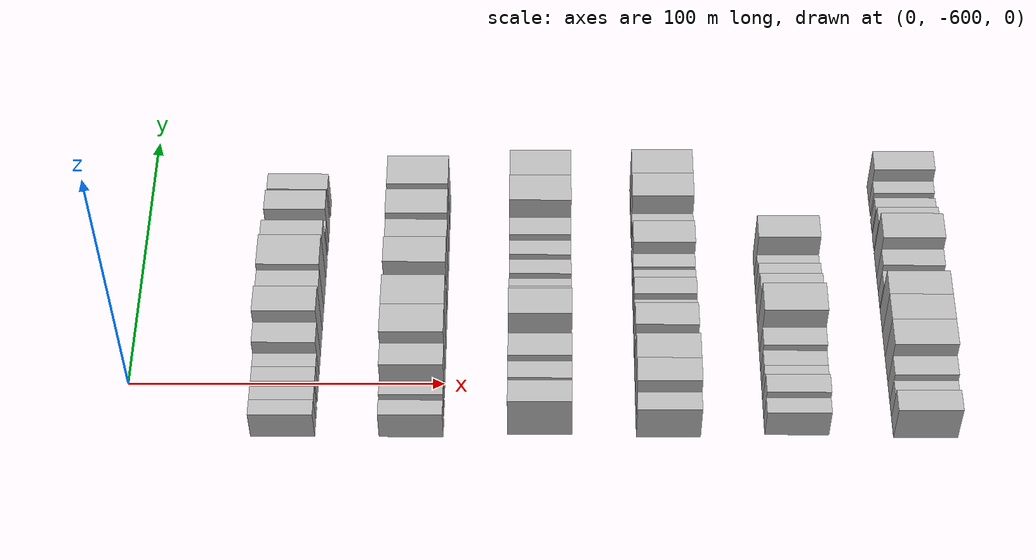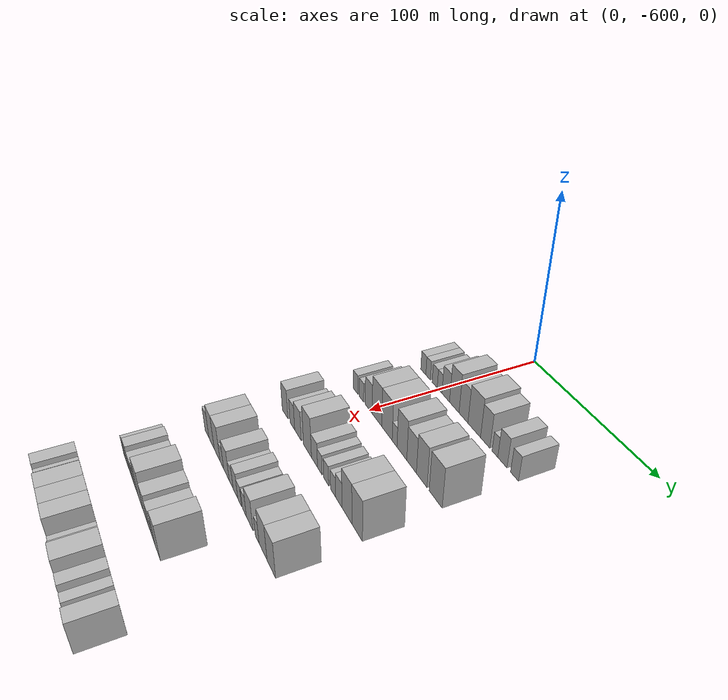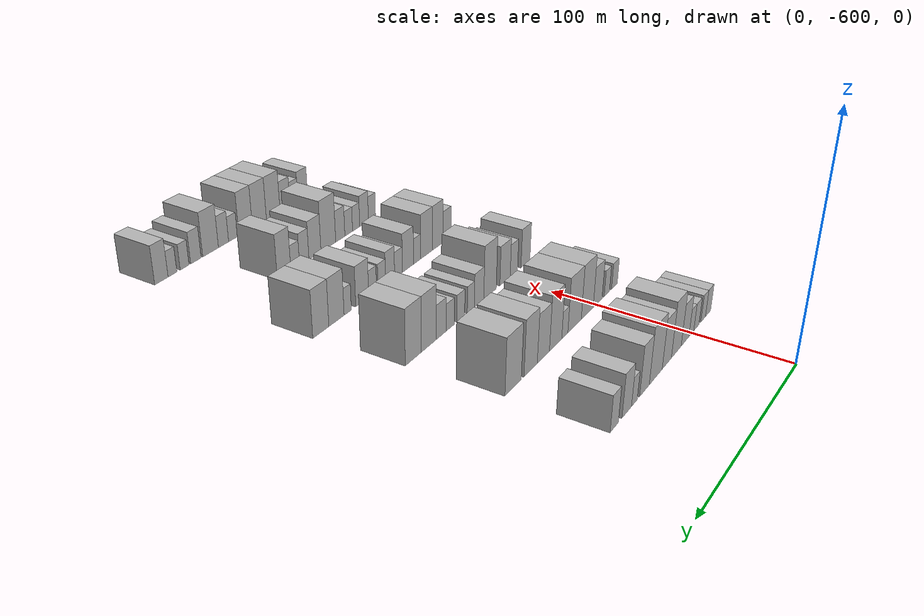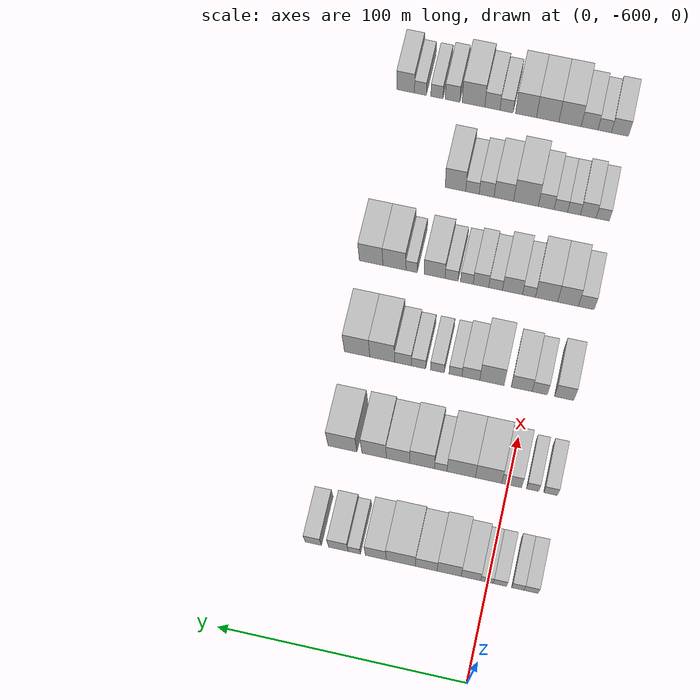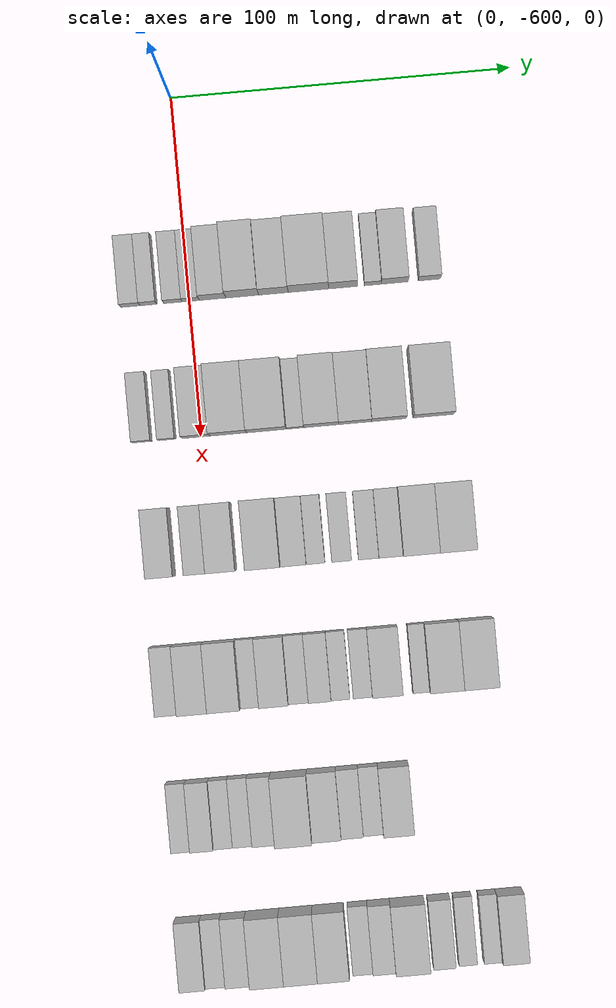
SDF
<sdf version="1.6">
 <world name="default">
  <model name="building_1">
   <static>1</static>
   <pose>50.0000 -617.1539 0 0.000000 0.000000 0.000000</pose>
   <link name="link">
    <pose>0 0 6.00 0 0 0</pose>
    <collision name="collision"><geometry><box><size>20.0000 5.6922 12.0000</size></box></geometry></collision>
    <visual name="visual">
     <cast_shadows>0</cast_shadows>
     <geometry><box><size>20.0000 5.6922 12.0000</size></box></geometry>
     <material>
      <script>
       <uri>model://HANNAS_wall/materials/scripts</uri>
       <uri>model://HANNAS_wall/materials/textures</uri>
       <name>vrc/HANNAS_wall</name>
      </script>
     </material>
    </visual>
   </link>
  </model>
  <model name="building_2">
   <static>1</static>
   <pose>50.0000 -611.8225 0 0.000000 0.000000 0.000000</pose>
   <link name="link">
    <pose>0 0 6.00 0 0 0</pose>
    <collision name="collision"><geometry><box><size>20.0000 4.9706 12.0000</size></box></geometry></collision>
    <visual name="visual">
     <cast_shadows>0</cast_shadows>
     <geometry><box><size>20.0000 4.9706 12.0000</size></box></geometry>
     <material>
      <script>
       <uri>model://HANNAS_wall/materials/scripts</uri>
       <uri>model://HANNAS_wall/materials/textures</uri>
       <name>vrc/HANNAS_wall</name>
      </script>
     </material>
    </visual>
   </link>
  </model>
  <model name="building_3">
   <static>1</static>
   <pose>50.0000 -604.5954 0 0.000000 0.000000 0.000000</pose>
   <link name="link">
    <pose>0 0 6.00 0 0 0</pose>
    <collision name="collision"><geometry><box><size>20.0000 5.4835 12.0000</size></box></geometry></collision>
    <visual name="visual">
     <cast_shadows>0</cast_shadows>
     <geometry><box><size>20.0000 5.4835 12.0000</size></box></geometry>
     <material>
      <script>
       <uri>model://HANNAS_wall/materials/scripts</uri>
       <uri>model://HANNAS_wall/materials/textures</uri>
       <name>vrc/HANNAS_wall</name>
      </script>
     </material>
    </visual>
   </link>
  </model>
  <model name="building_4">
   <static>1</static>
   <pose>50.0000 -599.3348 0 0.000000 0.000000 0.000000</pose>
   <link name="link">
    <pose>0 0 6.00 0 0 0</pose>
    <collision name="collision"><geometry><box><size>20.0000 5.0378 12.0000</size></box></geometry></collision>
    <visual name="visual">
     <cast_shadows>0</cast_shadows>
     <geometry><box><size>20.0000 5.0378 12.0000</size></box></geometry>
     <material>
      <script>
       <uri>model://HANNAS_wall/materials/scripts</uri>
       <uri>model://HANNAS_wall/materials/textures</uri>
       <name>vrc/HANNAS_wall</name>
      </script>
     </material>
    </visual>
   </link>
  </model>
  <model name="building_5">
   <static>1</static>
   <pose>50.0000 -592.9077 0 0.000000 0.000000 0.000000</pose>
   <link name="link">
    <pose>0 0 9.00 0 0 0</pose>
    <collision name="collision"><geometry><box><size>20.0000 7.8165 18.0000</size></box></geometry></collision>
    <visual name="visual">
     <cast_shadows>0</cast_shadows>
     <geometry><box><size>20.0000 7.8165 18.0000</size></box></geometry>
     <material>
      <script>
       <uri>model://HANNAS_wall/materials/scripts</uri>
       <uri>model://HANNAS_wall/materials/textures</uri>
       <name>vrc/HANNAS_wall</name>
      </script>
     </material>
    </visual>
   </link>
  </model>
  <model name="building_6">
   <static>1</static>
   <pose>50.0000 -584.1828 0 0.000000 0.000000 0.000000</pose>
   <link name="link">
    <pose>0 0 12.00 0 0 0</pose>
    <collision name="collision"><geometry><box><size>20.0000 9.6333 24.0000</size></box></geometry></collision>
    <visual name="visual">
     <cast_shadows>0</cast_shadows>
     <geometry><box><size>20.0000 9.6333 24.0000</size></box></geometry>
     <material>
      <script>
       <uri>model://HANNAS_wall/materials/scripts</uri>
       <uri>model://HANNAS_wall/materials/textures</uri>
       <name>vrc/HANNAS_wall</name>
      </script>
     </material>
    </visual>
   </link>
  </model>
  <model name="building_7">
   <static>1</static>
   <pose>50.0000 -575.0183 0 0.000000 0.000000 0.000000</pose>
   <link name="link">
    <pose>0 0 10.50 0 0 0</pose>
    <collision name="collision"><geometry><box><size>20.0000 8.6957 21.0000</size></box></geometry></collision>
    <visual name="visual">
     <cast_shadows>0</cast_shadows>
     <geometry><box><size>20.0000 8.6957 21.0000</size></box></geometry>
     <material>
      <script>
       <uri>model://HANNAS_wall/materials/scripts</uri>
       <uri>model://HANNAS_wall/materials/textures</uri>
       <name>vrc/HANNAS_wall</name>
      </script>
     </material>
    </visual>
   </link>
  </model>
  <model name="building_8">
   <static>1</static>
   <pose>50.0000 -564.7287 0 0.000000 0.000000 0.000000</pose>
   <link name="link">
    <pose>0 0 12.00 0 0 0</pose>
    <collision name="collision"><geometry><box><size>20.0000 11.8835 24.0000</size></box></geometry></collision>
    <visual name="visual">
     <cast_shadows>0</cast_shadows>
     <geometry><box><size>20.0000 11.8835 24.0000</size></box></geometry>
     <material>
      <script>
       <uri>model://HANNAS_wall/materials/scripts</uri>
       <uri>model://HANNAS_wall/materials/textures</uri>
       <name>vrc/HANNAS_wall</name>
      </script>
     </material>
    </visual>
   </link>
  </model>
  <model name="building_9">
   <static>1</static>
   <pose>50.0000 -554.5336 0 0.000000 0.000000 0.000000</pose>
   <link name="link">
    <pose>0 0 10.50 0 0 0</pose>
    <collision name="collision"><geometry><box><size>20.0000 8.5068 21.0000</size></box></geometry></collision>
    <visual name="visual">
     <cast_shadows>0</cast_shadows>
     <geometry><box><size>20.0000 8.5068 21.0000</size></box></geometry>
     <material>
      <script>
       <uri>model://HANNAS_wall/materials/scripts</uri>
       <uri>model://HANNAS_wall/materials/textures</uri>
       <name>vrc/HANNAS_wall</name>
      </script>
     </material>
    </visual>
   </link>
  </model>
  <model name="building_10">
   <static>1</static>
   <pose>50.0000 -545.7982 0 0.000000 0.000000 0.000000</pose>
   <link name="link">
    <pose>0 0 6.00 0 0 0</pose>
    <collision name="collision"><geometry><box><size>20.0000 4.9641 12.0000</size></box></geometry></collision>
    <visual name="visual">
     <cast_shadows>0</cast_shadows>
     <geometry><box><size>20.0000 4.9641 12.0000</size></box></geometry>
     <material>
      <script>
       <uri>model://HANNAS_wall/materials/scripts</uri>
       <uri>model://HANNAS_wall/materials/textures</uri>
       <name>vrc/HANNAS_wall</name>
      </script>
     </material>
    </visual>
   </link>
  </model>
  <model name="building_11">
   <static>1</static>
   <pose>50.0000 -539.3465 0 0.000000 0.000000 0.000000</pose>
   <link name="link">
    <pose>0 0 9.00 0 0 0</pose>
    <collision name="collision"><geometry><box><size>20.0000 7.9392 18.0000</size></box></geometry></collision>
    <visual name="visual">
     <cast_shadows>0</cast_shadows>
     <geometry><box><size>20.0000 7.9392 18.0000</size></box></geometry>
     <material>
      <script>
       <uri>model://HANNAS_wall/materials/scripts</uri>
       <uri>model://HANNAS_wall/materials/textures</uri>
       <name>vrc/HANNAS_wall</name>
      </script>
     </material>
    </visual>
   </link>
  </model>
  <model name="building_12">
   <static>1</static>
   <pose>50.0000 -529.0915 0 0.000000 0.000000 0.000000</pose>
   <link name="link">
    <pose>0 0 7.50 0 0 0</pose>
    <collision name="collision"><geometry><box><size>20.0000 6.5708 15.0000</size></box></geometry></collision>
    <visual name="visual">
     <cast_shadows>0</cast_shadows>
     <geometry><box><size>20.0000 6.5708 15.0000</size></box></geometry>
     <material>
      <script>
       <uri>model://HANNAS_wall/materials/scripts</uri>
       <uri>model://HANNAS_wall/materials/textures</uri>
       <name>vrc/HANNAS_wall</name>
      </script>
     </material>
    </visual>
   </link>
  </model>
  <model name="building_134">
   <static>1</static>
   <pose>90.0000 -617.1951 0 0.000000 0.000000 0.000000</pose>
   <link name="link">
    <pose>0 0 6.00 0 0 0</pose>
    <collision name="collision"><geometry><box><size>20.0000 5.6098 12.0000</size></box></geometry></collision>
    <visual name="visual">
     <cast_shadows>0</cast_shadows>
     <geometry><box><size>20.0000 5.6098 12.0000</size></box></geometry>
     <material>
      <script>
       <uri>model://HANNAS_wall/materials/scripts</uri>
       <uri>model://HANNAS_wall/materials/textures</uri>
       <name>vrc/HANNAS_wall</name>
      </script>
     </material>
    </visual>
   </link>
  </model>
  <model name="building_135">
   <static>1</static>
   <pose>90.0000 -609.8562 0 0.000000 0.000000 0.000000</pose>
   <link name="link">
    <pose>0 0 6.00 0 0 0</pose>
    <collision name="collision"><geometry><box><size>20.0000 5.0679 12.0000</size></box></geometry></collision>
    <visual name="visual">
     <cast_shadows>0</cast_shadows>
     <geometry><box><size>20.0000 5.0679 12.0000</size></box></geometry>
     <material>
      <script>
       <uri>model://HANNAS_wall/materials/scripts</uri>
       <uri>model://HANNAS_wall/materials/textures</uri>
       <name>vrc/HANNAS_wall</name>
      </script>
     </material>
    </visual>
   </link>
  </model>
  <model name="building_136">
   <static>1</static>
   <pose>90.0000 -601.2169 0 0.000000 0.000000 0.000000</pose>
   <link name="link">
    <pose>0 0 9.00 0 0 0</pose>
    <collision name="collision"><geometry><box><size>20.0000 8.2106 18.0000</size></box></geometry></collision>
    <visual name="visual">
     <cast_shadows>0</cast_shadows>
     <geometry><box><size>20.0000 8.2106 18.0000</size></box></geometry>
     <material>
      <script>
       <uri>model://HANNAS_wall/materials/scripts</uri>
       <uri>model://HANNAS_wall/materials/textures</uri>
       <name>vrc/HANNAS_wall</name>
      </script>
     </material>
    </visual>
   </link>
  </model>
  <model name="building_137">
   <static>1</static>
   <pose>90.0000 -591.7312 0 0.000000 0.000000 0.000000</pose>
   <link name="link">
    <pose>0 0 12.00 0 0 0</pose>
    <collision name="collision"><geometry><box><size>20.0000 10.7608 24.0000</size></box></geometry></collision>
    <visual name="visual">
     <cast_shadows>0</cast_shadows>
     <geometry><box><size>20.0000 10.7608 24.0000</size></box></geometry>
     <material>
      <script>
       <uri>model://HANNAS_wall/materials/scripts</uri>
       <uri>model://HANNAS_wall/materials/textures</uri>
       <name>vrc/HANNAS_wall</name>
      </script>
     </material>
    </visual>
   </link>
  </model>
  <model name="building_138">
   <static>1</static>
   <pose>90.0000 -580.5293 0 0.000000 0.000000 0.000000</pose>
   <link name="link">
    <pose>0 0 12.00 0 0 0</pose>
    <collision name="collision"><geometry><box><size>20.0000 11.6430 24.0000</size></box></geometry></collision>
    <visual name="visual">
     <cast_shadows>0</cast_shadows>
     <geometry><box><size>20.0000 11.6430 24.0000</size></box></geometry>
     <material>
      <script>
       <uri>model://HANNAS_wall/materials/scripts</uri>
       <uri>model://HANNAS_wall/materials/textures</uri>
       <name>vrc/HANNAS_wall</name>
      </script>
     </material>
    </visual>
   </link>
  </model>
  <model name="building_139">
   <static>1</static>
   <pose>90.0000 -572.1271 0 0.000000 0.000000 0.000000</pose>
   <link name="link">
    <pose>0 0 6.00 0 0 0</pose>
    <collision name="collision"><geometry><box><size>20.0000 5.1614 12.0000</size></box></geometry></collision>
    <visual name="visual">
     <cast_shadows>0</cast_shadows>
     <geometry><box><size>20.0000 5.1614 12.0000</size></box></geometry>
     <material>
      <script>
       <uri>model://HANNAS_wall/materials/scripts</uri>
       <uri>model://HANNAS_wall/materials/textures</uri>
       <name>vrc/HANNAS_wall</name>
      </script>
     </material>
    </visual>
   </link>
  </model>
  <model name="building_140">
   <static>1</static>
   <pose>90.0000 -564.4922 0 0.000000 0.000000 0.000000</pose>
   <link name="link">
    <pose>0 0 12.00 0 0 0</pose>
    <collision name="collision"><geometry><box><size>20.0000 10.1083 24.0000</size></box></geometry></collision>
    <visual name="visual">
     <cast_shadows>0</cast_shadows>
     <geometry><box><size>20.0000 10.1083 24.0000</size></box></geometry>
     <material>
      <script>
       <uri>model://HANNAS_wall/materials/scripts</uri>
       <uri>model://HANNAS_wall/materials/textures</uri>
       <name>vrc/HANNAS_wall</name>
      </script>
     </material>
    </visual>
   </link>
  </model>
  <model name="building_141">
   <static>1</static>
   <pose>90.0000 -554.6100 0 0.000000 0.000000 0.000000</pose>
   <link name="link">
    <pose>0 0 10.50 0 0 0</pose>
    <collision name="collision"><geometry><box><size>20.0000 9.6560 21.0000</size></box></geometry></collision>
    <visual name="visual">
     <cast_shadows>0</cast_shadows>
     <geometry><box><size>20.0000 9.6560 21.0000</size></box></geometry>
     <material>
      <script>
       <uri>model://HANNAS_wall/materials/scripts</uri>
       <uri>model://HANNAS_wall/materials/textures</uri>
       <name>vrc/HANNAS_wall</name>
      </script>
     </material>
    </visual>
   </link>
  </model>
  <model name="building_142">
   <static>1</static>
   <pose>90.0000 -544.6710 0 0.000000 0.000000 0.000000</pose>
   <link name="link">
    <pose>0 0 12.00 0 0 0</pose>
    <collision name="collision"><geometry><box><size>20.0000 10.2221 24.0000</size></box></geometry></collision>
    <visual name="visual">
     <cast_shadows>0</cast_shadows>
     <geometry><box><size>20.0000 10.2221 24.0000</size></box></geometry>
     <material>
      <script>
       <uri>model://HANNAS_wall/materials/scripts</uri>
       <uri>model://HANNAS_wall/materials/textures</uri>
       <name>vrc/HANNAS_wall</name>
      </script>
     </material>
    </visual>
   </link>
  </model>
  <model name="building_143">
   <static>1</static>
   <pose>90.0000 -531.5907 0 0.000000 0.000000 0.000000</pose>
   <link name="link">
    <pose>0 0 12.00 0 0 0</pose>
    <collision name="collision"><geometry><box><size>20.0000 11.9384 24.0000</size></box></geometry></collision>
    <visual name="visual">
     <cast_shadows>0</cast_shadows>
     <geometry><box><size>20.0000 11.9384 24.0000</size></box></geometry>
     <material>
      <script>
       <uri>model://HANNAS_wall/materials/scripts</uri>
       <uri>model://HANNAS_wall/materials/textures</uri>
       <name>vrc/HANNAS_wall</name>
      </script>
     </material>
    </visual>
   </link>
  </model>
  <model name="building_263">
   <static>1</static>
   <pose>130.0000 -615.0142 0 0.000000 0.000000 0.000000</pose>
   <link name="link">
    <pose>0 0 9.00 0 0 0</pose>
    <collision name="collision"><geometry><box><size>20.0000 7.9717 18.0000</size></box></geometry></collision>
    <visual name="visual">
     <cast_shadows>0</cast_shadows>
     <geometry><box><size>20.0000 7.9717 18.0000</size></box></geometry>
     <material>
      <script>
       <uri>model://HANNAS_wall/materials/scripts</uri>
       <uri>model://HANNAS_wall/materials/textures</uri>
       <name>vrc/HANNAS_wall</name>
      </script>
     </material>
    </visual>
   </link>
  </model>
  <model name="building_264">
   <static>1</static>
   <pose>130.0000 -604.8474 0 0.000000 0.000000 0.000000</pose>
   <link name="link">
    <pose>0 0 7.50 0 0 0</pose>
    <collision name="collision"><geometry><box><size>20.0000 6.3619 15.0000</size></box></geometry></collision>
    <visual name="visual">
     <cast_shadows>0</cast_shadows>
     <geometry><box><size>20.0000 6.3619 15.0000</size></box></geometry>
     <material>
      <script>
       <uri>model://HANNAS_wall/materials/scripts</uri>
       <uri>model://HANNAS_wall/materials/textures</uri>
       <name>vrc/HANNAS_wall</name>
      </script>
     </material>
    </visual>
   </link>
  </model>
  <model name="building_265">
   <static>1</static>
   <pose>130.0000 -597.3200 0 0.000000 0.000000 0.000000</pose>
   <link name="link">
    <pose>0 0 9.00 0 0 0</pose>
    <collision name="collision"><geometry><box><size>20.0000 8.6930 18.0000</size></box></geometry></collision>
    <visual name="visual">
     <cast_shadows>0</cast_shadows>
     <geometry><box><size>20.0000 8.6930 18.0000</size></box></geometry>
     <material>
      <script>
       <uri>model://HANNAS_wall/materials/scripts</uri>
       <uri>model://HANNAS_wall/materials/textures</uri>
       <name>vrc/HANNAS_wall</name>
      </script>
     </material>
    </visual>
   </link>
  </model>
  <model name="building_266">
   <static>1</static>
   <pose>130.0000 -584.9146 0 0.000000 0.000000 0.000000</pose>
   <link name="link">
    <pose>0 0 12.00 0 0 0</pose>
    <collision name="collision"><geometry><box><size>20.0000 10.1177 24.0000</size></box></geometry></collision>
    <visual name="visual">
     <cast_shadows>0</cast_shadows>
     <geometry><box><size>20.0000 10.1177 24.0000</size></box></geometry>
     <material>
      <script>
       <uri>model://HANNAS_wall/materials/scripts</uri>
       <uri>model://HANNAS_wall/materials/textures</uri>
       <name>vrc/HANNAS_wall</name>
      </script>
     </material>
    </visual>
   </link>
  </model>
  <model name="building_267">
   <static>1</static>
   <pose>130.0000 -576.1169 0 0.000000 0.000000 0.000000</pose>
   <link name="link">
    <pose>0 0 7.50 0 0 0</pose>
    <collision name="collision"><geometry><box><size>20.0000 7.4777 15.0000</size></box></geometry></collision>
    <visual name="visual">
     <cast_shadows>0</cast_shadows>
     <geometry><box><size>20.0000 7.4777 15.0000</size></box></geometry>
     <material>
      <script>
       <uri>model://HANNAS_wall/materials/scripts</uri>
       <uri>model://HANNAS_wall/materials/textures</uri>
       <name>vrc/HANNAS_wall</name>
      </script>
     </material>
    </visual>
   </link>
  </model>
  <model name="building_268">
   <static>1</static>
   <pose>130.0000 -569.6667 0 0.000000 0.000000 0.000000</pose>
   <link name="link">
    <pose>0 0 6.00 0 0 0</pose>
    <collision name="collision"><geometry><box><size>20.0000 5.4227 12.0000</size></box></geometry></collision>
    <visual name="visual">
     <cast_shadows>0</cast_shadows>
     <geometry><box><size>20.0000 5.4227 12.0000</size></box></geometry>
     <material>
      <script>
       <uri>model://HANNAS_wall/materials/scripts</uri>
       <uri>model://HANNAS_wall/materials/textures</uri>
       <name>vrc/HANNAS_wall</name>
      </script>
     </material>
    </visual>
   </link>
  </model>
  <model name="building_269">
   <static>1</static>
   <pose>130.0000 -562.0652 0 0.000000 0.000000 0.000000</pose>
   <link name="link">
    <pose>0 0 6.00 0 0 0</pose>
    <collision name="collision"><geometry><box><size>20.0000 5.7803 12.0000</size></box></geometry></collision>
    <visual name="visual">
     <cast_shadows>0</cast_shadows>
     <geometry><box><size>20.0000 5.7803 12.0000</size></box></geometry>
     <material>
      <script>
       <uri>model://HANNAS_wall/materials/scripts</uri>
       <uri>model://HANNAS_wall/materials/textures</uri>
       <name>vrc/HANNAS_wall</name>
      </script>
     </material>
    </visual>
   </link>
  </model>
  <model name="building_270">
   <static>1</static>
   <pose>130.0000 -554.1951 0 0.000000 0.000000 0.000000</pose>
   <link name="link">
    <pose>0 0 6.00 0 0 0</pose>
    <collision name="collision"><geometry><box><size>20.0000 5.9599 12.0000</size></box></geometry></collision>
    <visual name="visual">
     <cast_shadows>0</cast_shadows>
     <geometry><box><size>20.0000 5.9599 12.0000</size></box></geometry>
     <material>
      <script>
       <uri>model://HANNAS_wall/materials/scripts</uri>
       <uri>model://HANNAS_wall/materials/textures</uri>
       <name>vrc/HANNAS_wall</name>
      </script>
     </material>
    </visual>
   </link>
  </model>
  <model name="building_271">
   <static>1</static>
   <pose>130.0000 -547.7134 0 0.000000 0.000000 0.000000</pose>
   <link name="link">
    <pose>0 0 7.50 0 0 0</pose>
    <collision name="collision"><geometry><box><size>20.0000 7.0035 15.0000</size></box></geometry></collision>
    <visual name="visual">
     <cast_shadows>0</cast_shadows>
     <geometry><box><size>20.0000 7.0035 15.0000</size></box></geometry>
     <material>
      <script>
       <uri>model://HANNAS_wall/materials/scripts</uri>
       <uri>model://HANNAS_wall/materials/textures</uri>
       <name>vrc/HANNAS_wall</name>
      </script>
     </material>
    </visual>
   </link>
  </model>
  <model name="building_272">
   <static>1</static>
   <pose>130.0000 -538.9358 0 0.000000 0.000000 0.000000</pose>
   <link name="link">
    <pose>0 0 12.00 0 0 0</pose>
    <collision name="collision"><geometry><box><size>20.0000 10.5517 24.0000</size></box></geometry></collision>
    <visual name="visual">
     <cast_shadows>0</cast_shadows>
     <geometry><box><size>20.0000 10.5517 24.0000</size></box></geometry>
     <material>
      <script>
       <uri>model://HANNAS_wall/materials/scripts</uri>
       <uri>model://HANNAS_wall/materials/textures</uri>
       <name>vrc/HANNAS_wall</name>
      </script>
     </material>
    </visual>
   </link>
  </model>
  <model name="building_273">
   <static>1</static>
   <pose>130.0000 -528.3076 0 0.000000 0.000000 0.000000</pose>
   <link name="link">
    <pose>0 0 12.00 0 0 0</pose>
    <collision name="collision"><geometry><box><size>20.0000 10.7046 24.0000</size></box></geometry></collision>
    <visual name="visual">
     <cast_shadows>0</cast_shadows>
     <geometry><box><size>20.0000 10.7046 24.0000</size></box></geometry>
     <material>
      <script>
       <uri>model://HANNAS_wall/materials/scripts</uri>
       <uri>model://HANNAS_wall/materials/textures</uri>
       <name>vrc/HANNAS_wall</name>
      </script>
     </material>
    </visual>
   </link>
  </model>
  <model name="building_402">
   <static>1</static>
   <pose>170.0000 -616.6520 0 0.000000 0.000000 0.000000</pose>
   <link name="link">
    <pose>0 0 7.50 0 0 0</pose>
    <collision name="collision"><geometry><box><size>20.0000 6.6960 15.0000</size></box></geometry></collision>
    <visual name="visual">
     <cast_shadows>0</cast_shadows>
     <geometry><box><size>20.0000 6.6960 15.0000</size></box></geometry>
     <material>
      <script>
       <uri>model://HANNAS_wall/materials/scripts</uri>
       <uri>model://HANNAS_wall/materials/textures</uri>
       <name>vrc/HANNAS_wall</name>
      </script>
     </material>
    </visual>
   </link>
  </model>
  <model name="building_403">
   <static>1</static>
   <pose>170.0000 -608.9173 0 0.000000 0.000000 0.000000</pose>
   <link name="link">
    <pose>0 0 10.50 0 0 0</pose>
    <collision name="collision"><geometry><box><size>20.0000 8.7734 21.0000</size></box></geometry></collision>
    <visual name="visual">
     <cast_shadows>0</cast_shadows>
     <geometry><box><size>20.0000 8.7734 21.0000</size></box></geometry>
     <material>
      <script>
       <uri>model://HANNAS_wall/materials/scripts</uri>
       <uri>model://HANNAS_wall/materials/textures</uri>
       <name>vrc/HANNAS_wall</name>
      </script>
     </material>
    </visual>
   </link>
  </model>
  <model name="building_404">
   <static>1</static>
   <pose>170.0000 -599.8105 0 0.000000 0.000000 0.000000</pose>
   <link name="link">
    <pose>0 0 10.50 0 0 0</pose>
    <collision name="collision"><geometry><box><size>20.0000 9.4401 21.0000</size></box></geometry></collision>
    <visual name="visual">
     <cast_shadows>0</cast_shadows>
     <geometry><box><size>20.0000 9.4401 21.0000</size></box></geometry>
     <material>
      <script>
       <uri>model://HANNAS_wall/materials/scripts</uri>
       <uri>model://HANNAS_wall/materials/textures</uri>
       <name>vrc/HANNAS_wall</name>
      </script>
     </material>
    </visual>
   </link>
  </model>
  <model name="building_405">
   <static>1</static>
   <pose>170.0000 -592.3672 0 0.000000 0.000000 0.000000</pose>
   <link name="link">
    <pose>0 0 6.00 0 0 0</pose>
    <collision name="collision"><geometry><box><size>20.0000 5.4466 12.0000</size></box></geometry></collision>
    <visual name="visual">
     <cast_shadows>0</cast_shadows>
     <geometry><box><size>20.0000 5.4466 12.0000</size></box></geometry>
     <material>
      <script>
       <uri>model://HANNAS_wall/materials/scripts</uri>
       <uri>model://HANNAS_wall/materials/textures</uri>
       <name>vrc/HANNAS_wall</name>
      </script>
     </material>
    </visual>
   </link>
  </model>
  <model name="building_406">
   <static>1</static>
   <pose>170.0000 -585.3953 0 0.000000 0.000000 0.000000</pose>
   <link name="link">
    <pose>0 0 9.00 0 0 0</pose>
    <collision name="collision"><geometry><box><size>20.0000 8.4971 18.0000</size></box></geometry></collision>
    <visual name="visual">
     <cast_shadows>0</cast_shadows>
     <geometry><box><size>20.0000 8.4971 18.0000</size></box></geometry>
     <material>
      <script>
       <uri>model://HANNAS_wall/materials/scripts</uri>
       <uri>model://HANNAS_wall/materials/textures</uri>
       <name>vrc/HANNAS_wall</name>
      </script>
     </material>
    </visual>
   </link>
  </model>
  <model name="building_407">
   <static>1</static>
   <pose>170.0000 -578.2338 0 0.000000 0.000000 0.000000</pose>
   <link name="link">
    <pose>0 0 6.00 0 0 0</pose>
    <collision name="collision"><geometry><box><size>20.0000 5.8258 12.0000</size></box></geometry></collision>
    <visual name="visual">
     <cast_shadows>0</cast_shadows>
     <geometry><box><size>20.0000 5.8258 12.0000</size></box></geometry>
     <material>
      <script>
       <uri>model://HANNAS_wall/materials/scripts</uri>
       <uri>model://HANNAS_wall/materials/textures</uri>
       <name>vrc/HANNAS_wall</name>
      </script>
     </material>
    </visual>
   </link>
  </model>
  <model name="building_408">
   <static>1</static>
   <pose>170.0000 -572.0092 0 0.000000 0.000000 0.000000</pose>
   <link name="link">
    <pose>0 0 7.50 0 0 0</pose>
    <collision name="collision"><geometry><box><size>20.0000 6.6234 15.0000</size></box></geometry></collision>
    <visual name="visual">
     <cast_shadows>0</cast_shadows>
     <geometry><box><size>20.0000 6.6234 15.0000</size></box></geometry>
     <material>
      <script>
       <uri>model://HANNAS_wall/materials/scripts</uri>
       <uri>model://HANNAS_wall/materials/textures</uri>
       <name>vrc/HANNAS_wall</name>
      </script>
     </material>
    </visual>
   </link>
  </model>
  <model name="building_409">
   <static>1</static>
   <pose>170.0000 -565.9766 0 0.000000 0.000000 0.000000</pose>
   <link name="link">
    <pose>0 0 6.00 0 0 0</pose>
    <collision name="collision"><geometry><box><size>20.0000 5.4419 12.0000</size></box></geometry></collision>
    <visual name="visual">
     <cast_shadows>0</cast_shadows>
     <geometry><box><size>20.0000 5.4419 12.0000</size></box></geometry>
     <material>
      <script>
       <uri>model://HANNAS_wall/materials/scripts</uri>
       <uri>model://HANNAS_wall/materials/textures</uri>
       <name>vrc/HANNAS_wall</name>
      </script>
     </material>
    </visual>
   </link>
  </model>
  <model name="building_410">
   <static>1</static>
   <pose>170.0000 -559.4733 0 0.000000 0.000000 0.000000</pose>
   <link name="link">
    <pose>0 0 6.00 0 0 0</pose>
    <collision name="collision"><geometry><box><size>20.0000 5.5647 12.0000</size></box></geometry></collision>
    <visual name="visual">
     <cast_shadows>0</cast_shadows>
     <geometry><box><size>20.0000 5.5647 12.0000</size></box></geometry>
     <material>
      <script>
       <uri>model://HANNAS_wall/materials/scripts</uri>
       <uri>model://HANNAS_wall/materials/textures</uri>
       <name>vrc/HANNAS_wall</name>
      </script>
     </material>
    </visual>
   </link>
  </model>
  <model name="building_411">
   <static>1</static>
   <pose>170.0000 -552.2453 0 0.000000 0.000000 0.000000</pose>
   <link name="link">
    <pose>0 0 9.00 0 0 0</pose>
    <collision name="collision"><geometry><box><size>20.0000 8.8912 18.0000</size></box></geometry></collision>
    <visual name="visual">
     <cast_shadows>0</cast_shadows>
     <geometry><box><size>20.0000 8.8912 18.0000</size></box></geometry>
     <material>
      <script>
       <uri>model://HANNAS_wall/materials/scripts</uri>
       <uri>model://HANNAS_wall/materials/textures</uri>
       <name>vrc/HANNAS_wall</name>
      </script>
     </material>
    </visual>
   </link>
  </model>
  <model name="building_412">
   <static>1</static>
   <pose>170.0000 -542.3906 0 0.000000 0.000000 0.000000</pose>
   <link name="link">
    <pose>0 0 6.00 0 0 0</pose>
    <collision name="collision"><geometry><box><size>20.0000 4.8181 12.0000</size></box></geometry></collision>
    <visual name="visual">
     <cast_shadows>0</cast_shadows>
     <geometry><box><size>20.0000 4.8181 12.0000</size></box></geometry>
     <material>
      <script>
       <uri>model://HANNAS_wall/materials/scripts</uri>
       <uri>model://HANNAS_wall/materials/textures</uri>
       <name>vrc/HANNAS_wall</name>
      </script>
     </material>
    </visual>
   </link>
  </model>
  <model name="building_413">
   <static>1</static>
   <pose>170.0000 -535.0372 0 0.000000 0.000000 0.000000</pose>
   <link name="link">
    <pose>0 0 10.50 0 0 0</pose>
    <collision name="collision"><geometry><box><size>20.0000 9.8886 21.0000</size></box></geometry></collision>
    <visual name="visual">
     <cast_shadows>0</cast_shadows>
     <geometry><box><size>20.0000 9.8886 21.0000</size></box></geometry>
     <material>
      <script>
       <uri>model://HANNAS_wall/materials/scripts</uri>
       <uri>model://HANNAS_wall/materials/textures</uri>
       <name>vrc/HANNAS_wall</name>
      </script>
     </material>
    </visual>
   </link>
  </model>
  <model name="building_414">
   <static>1</static>
   <pose>170.0000 -525.0313 0 0.000000 0.000000 0.000000</pose>
   <link name="link">
    <pose>0 0 10.50 0 0 0</pose>
    <collision name="collision"><geometry><box><size>20.0000 10.1233 21.0000</size></box></geometry></collision>
    <visual name="visual">
     <cast_shadows>0</cast_shadows>
     <geometry><box><size>20.0000 10.1233 21.0000</size></box></geometry>
     <material>
      <script>
       <uri>model://HANNAS_wall/materials/scripts</uri>
       <uri>model://HANNAS_wall/materials/textures</uri>
       <name>vrc/HANNAS_wall</name>
      </script>
     </material>
    </visual>
   </link>
  </model>
  <model name="building_547">
   <static>1</static>
   <pose>210.0000 -616.1676 0 0.000000 0.000000 0.000000</pose>
   <link name="link">
    <pose>0 0 6.00 0 0 0</pose>
    <collision name="collision"><geometry><box><size>20.0000 5.6649 12.0000</size></box></geometry></collision>
    <visual name="visual">
     <cast_shadows>0</cast_shadows>
     <geometry><box><size>20.0000 5.6649 12.0000</size></box></geometry>
     <material>
      <script>
       <uri>model://HANNAS_wall/materials/scripts</uri>
       <uri>model://HANNAS_wall/materials/textures</uri>
       <name>vrc/HANNAS_wall</name>
      </script>
     </material>
    </visual>
   </link>
  </model>
  <model name="building_548">
   <static>1</static>
   <pose>210.0000 -609.9434 0 0.000000 0.000000 0.000000</pose>
   <link name="link">
    <pose>0 0 7.50 0 0 0</pose>
    <collision name="collision"><geometry><box><size>20.0000 6.7835 15.0000</size></box></geometry></collision>
    <visual name="visual">
     <cast_shadows>0</cast_shadows>
     <geometry><box><size>20.0000 6.7835 15.0000</size></box></geometry>
     <material>
      <script>
       <uri>model://HANNAS_wall/materials/scripts</uri>
       <uri>model://HANNAS_wall/materials/textures</uri>
       <name>vrc/HANNAS_wall</name>
      </script>
     </material>
    </visual>
   </link>
  </model>
  <model name="building_549">
   <static>1</static>
   <pose>210.0000 -603.7930 0 0.000000 0.000000 0.000000</pose>
   <link name="link">
    <pose>0 0 6.00 0 0 0</pose>
    <collision name="collision"><geometry><box><size>20.0000 5.5172 12.0000</size></box></geometry></collision>
    <visual name="visual">
     <cast_shadows>0</cast_shadows>
     <geometry><box><size>20.0000 5.5172 12.0000</size></box></geometry>
     <material>
      <script>
       <uri>model://HANNAS_wall/materials/scripts</uri>
       <uri>model://HANNAS_wall/materials/textures</uri>
       <name>vrc/HANNAS_wall</name>
      </script>
     </material>
    </visual>
   </link>
  </model>
  <model name="building_550">
   <static>1</static>
   <pose>210.0000 -598.1419 0 0.000000 0.000000 0.000000</pose>
   <link name="link">
    <pose>0 0 6.00 0 0 0</pose>
    <collision name="collision"><geometry><box><size>20.0000 5.7850 12.0000</size></box></geometry></collision>
    <visual name="visual">
     <cast_shadows>0</cast_shadows>
     <geometry><box><size>20.0000 5.7850 12.0000</size></box></geometry>
     <material>
      <script>
       <uri>model://HANNAS_wall/materials/scripts</uri>
       <uri>model://HANNAS_wall/materials/textures</uri>
       <name>vrc/HANNAS_wall</name>
      </script>
     </material>
    </visual>
   </link>
  </model>
  <model name="building_551">
   <static>1</static>
   <pose>210.0000 -591.8483 0 0.000000 0.000000 0.000000</pose>
   <link name="link">
    <pose>0 0 7.50 0 0 0</pose>
    <collision name="collision"><geometry><box><size>20.0000 6.8022 15.0000</size></box></geometry></collision>
    <visual name="visual">
     <cast_shadows>0</cast_shadows>
     <geometry><box><size>20.0000 6.8022 15.0000</size></box></geometry>
     <material>
      <script>
       <uri>model://HANNAS_wall/materials/scripts</uri>
       <uri>model://HANNAS_wall/materials/textures</uri>
       <name>vrc/HANNAS_wall</name>
      </script>
     </material>
    </visual>
   </link>
  </model>
  <model name="building_552">
   <static>1</static>
   <pose>210.0000 -583.1223 0 0.000000 0.000000 0.000000</pose>
   <link name="link">
    <pose>0 0 12.00 0 0 0</pose>
    <collision name="collision"><geometry><box><size>20.0000 10.6498 24.0000</size></box></geometry></collision>
    <visual name="visual">
     <cast_shadows>0</cast_shadows>
     <geometry><box><size>20.0000 10.6498 24.0000</size></box></geometry>
     <material>
      <script>
       <uri>model://HANNAS_wall/materials/scripts</uri>
       <uri>model://HANNAS_wall/materials/textures</uri>
       <name>vrc/HANNAS_wall</name>
      </script>
     </material>
    </visual>
   </link>
  </model>
  <model name="building_553">
   <static>1</static>
   <pose>210.0000 -573.5734 0 0.000000 0.000000 0.000000</pose>
   <link name="link">
    <pose>0 0 9.00 0 0 0</pose>
    <collision name="collision"><geometry><box><size>20.0000 8.4481 18.0000</size></box></geometry></collision>
    <visual name="visual">
     <cast_shadows>0</cast_shadows>
     <geometry><box><size>20.0000 8.4481 18.0000</size></box></geometry>
     <material>
      <script>
       <uri>model://HANNAS_wall/materials/scripts</uri>
       <uri>model://HANNAS_wall/materials/textures</uri>
       <name>vrc/HANNAS_wall</name>
      </script>
     </material>
    </visual>
   </link>
  </model>
  <model name="building_554">
   <static>1</static>
   <pose>210.0000 -566.1201 0 0.000000 0.000000 0.000000</pose>
   <link name="link">
    <pose>0 0 7.50 0 0 0</pose>
    <collision name="collision"><geometry><box><size>20.0000 6.4584 15.0000</size></box></geometry></collision>
    <visual name="visual">
     <cast_shadows>0</cast_shadows>
     <geometry><box><size>20.0000 6.4584 15.0000</size></box></geometry>
     <material>
      <script>
       <uri>model://HANNAS_wall/materials/scripts</uri>
       <uri>model://HANNAS_wall/materials/textures</uri>
       <name>vrc/HANNAS_wall</name>
      </script>
     </material>
    </visual>
   </link>
  </model>
  <model name="building_555">
   <static>1</static>
   <pose>210.0000 -559.9785 0 0.000000 0.000000 0.000000</pose>
   <link name="link">
    <pose>0 0 6.00 0 0 0</pose>
    <collision name="collision"><geometry><box><size>20.0000 5.8249 12.0000</size></box></geometry></collision>
    <visual name="visual">
     <cast_shadows>0</cast_shadows>
     <geometry><box><size>20.0000 5.8249 12.0000</size></box></geometry>
     <material>
      <script>
       <uri>model://HANNAS_wall/materials/scripts</uri>
       <uri>model://HANNAS_wall/materials/textures</uri>
       <name>vrc/HANNAS_wall</name>
      </script>
     </material>
    </visual>
   </link>
  </model>
  <model name="building_556">
   <static>1</static>
   <pose>210.0000 -552.6031 0 0.000000 0.000000 0.000000</pose>
   <link name="link">
    <pose>0 0 10.50 0 0 0</pose>
    <collision name="collision"><geometry><box><size>20.0000 8.9258 21.0000</size></box></geometry></collision>
    <visual name="visual">
     <cast_shadows>0</cast_shadows>
     <geometry><box><size>20.0000 8.9258 21.0000</size></box></geometry>
     <material>
      <script>
       <uri>model://HANNAS_wall/materials/scripts</uri>
       <uri>model://HANNAS_wall/materials/textures</uri>
       <name>vrc/HANNAS_wall</name>
      </script>
     </material>
    </visual>
   </link>
  </model>
  <model name="building_688">
   <static>1</static>
   <pose>250.0000 -616.2572 0 0.000000 0.000000 0.000000</pose>
   <link name="link">
    <pose>0 0 7.50 0 0 0</pose>
    <collision name="collision"><geometry><box><size>20.0000 7.4857 15.0000</size></box></geometry></collision>
    <visual name="visual">
     <cast_shadows>0</cast_shadows>
     <geometry><box><size>20.0000 7.4857 15.0000</size></box></geometry>
     <material>
      <script>
       <uri>model://HANNAS_wall/materials/scripts</uri>
       <uri>model://HANNAS_wall/materials/textures</uri>
       <name>vrc/HANNAS_wall</name>
      </script>
     </material>
    </visual>
   </link>
  </model>
  <model name="building_689">
   <static>1</static>
   <pose>250.0000 -609.5752 0 0.000000 0.000000 0.000000</pose>
   <link name="link">
    <pose>0 0 6.00 0 0 0</pose>
    <collision name="collision"><geometry><box><size>20.0000 5.8783 12.0000</size></box></geometry></collision>
    <visual name="visual">
     <cast_shadows>0</cast_shadows>
     <geometry><box><size>20.0000 5.8783 12.0000</size></box></geometry>
     <material>
      <script>
       <uri>model://HANNAS_wall/materials/scripts</uri>
       <uri>model://HANNAS_wall/materials/textures</uri>
       <name>vrc/HANNAS_wall</name>
      </script>
     </material>
    </visual>
   </link>
  </model>
  <model name="building_690">
   <static>1</static>
   <pose>250.0000 -602.9971 0 0.000000 0.000000 0.000000</pose>
   <link name="link">
    <pose>0 0 7.50 0 0 0</pose>
    <collision name="collision"><geometry><box><size>20.0000 7.2779 15.0000</size></box></geometry></collision>
    <visual name="visual">
     <cast_shadows>0</cast_shadows>
     <geometry><box><size>20.0000 7.2779 15.0000</size></box></geometry>
     <material>
      <script>
       <uri>model://HANNAS_wall/materials/scripts</uri>
       <uri>model://HANNAS_wall/materials/textures</uri>
       <name>vrc/HANNAS_wall</name>
      </script>
     </material>
    </visual>
   </link>
  </model>
  <model name="building_691">
   <static>1</static>
   <pose>250.0000 -594.4446 0 0.000000 0.000000 0.000000</pose>
   <link name="link">
    <pose>0 0 10.50 0 0 0</pose>
    <collision name="collision"><geometry><box><size>20.0000 9.8272 21.0000</size></box></geometry></collision>
    <visual name="visual">
     <cast_shadows>0</cast_shadows>
     <geometry><box><size>20.0000 9.8272 21.0000</size></box></geometry>
     <material>
      <script>
       <uri>model://HANNAS_wall/materials/scripts</uri>
       <uri>model://HANNAS_wall/materials/textures</uri>
       <name>vrc/HANNAS_wall</name>
      </script>
     </material>
    </visual>
   </link>
  </model>
  <model name="building_692">
   <static>1</static>
   <pose>250.0000 -584.6421 0 0.000000 0.000000 0.000000</pose>
   <link name="link">
    <pose>0 0 10.50 0 0 0</pose>
    <collision name="collision"><geometry><box><size>20.0000 9.7779 21.0000</size></box></geometry></collision>
    <visual name="visual">
     <cast_shadows>0</cast_shadows>
     <geometry><box><size>20.0000 9.7779 21.0000</size></box></geometry>
     <material>
      <script>
       <uri>model://HANNAS_wall/materials/scripts</uri>
       <uri>model://HANNAS_wall/materials/textures</uri>
       <name>vrc/HANNAS_wall</name>
      </script>
     </material>
    </visual>
   </link>
  </model>
  <model name="building_693">
   <static>1</static>
   <pose>250.0000 -575.1364 0 0.000000 0.000000 0.000000</pose>
   <link name="link">
    <pose>0 0 10.50 0 0 0</pose>
    <collision name="collision"><geometry><box><size>20.0000 9.2333 21.0000</size></box></geometry></collision>
    <visual name="visual">
     <cast_shadows>0</cast_shadows>
     <geometry><box><size>20.0000 9.2333 21.0000</size></box></geometry>
     <material>
      <script>
       <uri>model://HANNAS_wall/materials/scripts</uri>
       <uri>model://HANNAS_wall/materials/textures</uri>
       <name>vrc/HANNAS_wall</name>
      </script>
     </material>
    </visual>
   </link>
  </model>
  <model name="building_694">
   <static>1</static>
   <pose>250.0000 -566.5959 0 0.000000 0.000000 0.000000</pose>
   <link name="link">
    <pose>0 0 6.00 0 0 0</pose>
    <collision name="collision"><geometry><box><size>20.0000 5.8478 12.0000</size></box></geometry></collision>
    <visual name="visual">
     <cast_shadows>0</cast_shadows>
     <geometry><box><size>20.0000 5.8478 12.0000</size></box></geometry>
     <material>
      <script>
       <uri>model://HANNAS_wall/materials/scripts</uri>
       <uri>model://HANNAS_wall/materials/textures</uri>
       <name>vrc/HANNAS_wall</name>
      </script>
     </material>
    </visual>
   </link>
  </model>
  <model name="building_695">
   <static>1</static>
   <pose>250.0000 -560.3564 0 0.000000 0.000000 0.000000</pose>
   <link name="link">
    <pose>0 0 7.50 0 0 0</pose>
    <collision name="collision"><geometry><box><size>20.0000 6.6310 15.0000</size></box></geometry></collision>
    <visual name="visual">
     <cast_shadows>0</cast_shadows>
     <geometry><box><size>20.0000 6.6310 15.0000</size></box></geometry>
     <material>
      <script>
       <uri>model://HANNAS_wall/materials/scripts</uri>
       <uri>model://HANNAS_wall/materials/textures</uri>
       <name>vrc/HANNAS_wall</name>
      </script>
     </material>
    </visual>
   </link>
  </model>
  <model name="building_696">
   <static>1</static>
   <pose>250.0000 -552.0308 0 0.000000 0.000000 0.000000</pose>
   <link name="link">
    <pose>0 0 10.50 0 0 0</pose>
    <collision name="collision"><geometry><box><size>20.0000 10.0202 21.0000</size></box></geometry></collision>
    <visual name="visual">
     <cast_shadows>0</cast_shadows>
     <geometry><box><size>20.0000 10.0202 21.0000</size></box></geometry>
     <material>
      <script>
       <uri>model://HANNAS_wall/materials/scripts</uri>
       <uri>model://HANNAS_wall/materials/textures</uri>
       <name>vrc/HANNAS_wall</name>
      </script>
     </material>
    </visual>
   </link>
  </model>
  <model name="building_697">
   <static>1</static>
   <pose>250.0000 -542.7820 0 0.000000 0.000000 0.000000</pose>
   <link name="link">
    <pose>0 0 7.50 0 0 0</pose>
    <collision name="collision"><geometry><box><size>20.0000 6.4774 15.0000</size></box></geometry></collision>
    <visual name="visual">
     <cast_shadows>0</cast_shadows>
     <geometry><box><size>20.0000 6.4774 15.0000</size></box></geometry>
     <material>
      <script>
       <uri>model://HANNAS_wall/materials/scripts</uri>
       <uri>model://HANNAS_wall/materials/textures</uri>
       <name>vrc/HANNAS_wall</name>
      </script>
     </material>
    </visual>
   </link>
  </model>
  <model name="building_698">
   <static>1</static>
   <pose>250.0000 -535.8706 0 0.000000 0.000000 0.000000</pose>
   <link name="link">
    <pose>0 0 6.00 0 0 0</pose>
    <collision name="collision"><geometry><box><size>20.0000 5.3454 12.0000</size></box></geometry></collision>
    <visual name="visual">
     <cast_shadows>0</cast_shadows>
     <geometry><box><size>20.0000 5.3454 12.0000</size></box></geometry>
     <material>
      <script>
       <uri>model://HANNAS_wall/materials/scripts</uri>
       <uri>model://HANNAS_wall/materials/textures</uri>
       <name>vrc/HANNAS_wall</name>
      </script>
     </material>
    </visual>
   </link>
  </model>
  <model name="building_699">
   <static>1</static>
   <pose>250.0000 -528.6011 0 0.000000 0.000000 0.000000</pose>
   <link name="link">
    <pose>0 0 6.00 0 0 0</pose>
    <collision name="collision"><geometry><box><size>20.0000 5.1936 12.0000</size></box></geometry></collision>
    <visual name="visual">
     <cast_shadows>0</cast_shadows>
     <geometry><box><size>20.0000 5.1936 12.0000</size></box></geometry>
     <material>
      <script>
       <uri>model://HANNAS_wall/materials/scripts</uri>
       <uri>model://HANNAS_wall/materials/textures</uri>
       <name>vrc/HANNAS_wall</name>
      </script>
     </material>
    </visual>
   </link>
  </model>
  <model name="building_700">
   <static>1</static>
   <pose>250.0000 -522.1089 0 0.000000 0.000000 0.000000</pose>
   <link name="link">
    <pose>0 0 9.00 0 0 0</pose>
    <collision name="collision"><geometry><box><size>20.0000 7.7908 18.0000</size></box></geometry></collision>
    <visual name="visual">
     <cast_shadows>0</cast_shadows>
     <geometry><box><size>20.0000 7.7908 18.0000</size></box></geometry>
     <material>
      <script>
       <uri>model://HANNAS_wall/materials/scripts</uri>
       <uri>model://HANNAS_wall/materials/textures</uri>
       <name>vrc/HANNAS_wall</name>
      </script>
     </material>
    </visual>
   </link>
  </model>
 </world>
</sdf>
